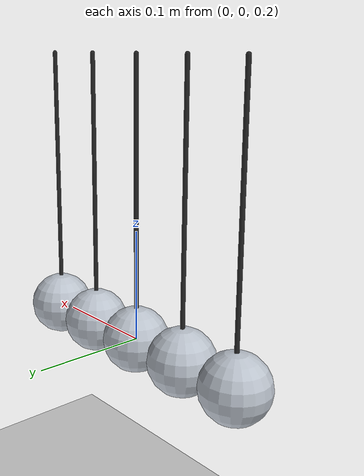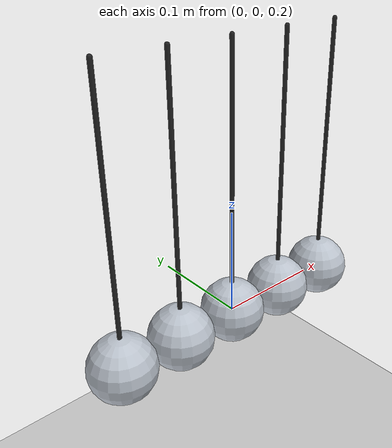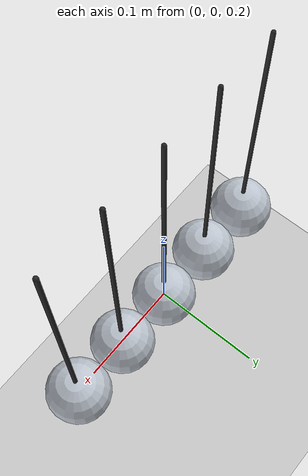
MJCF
<mujoco model="newtons_cradle_5_balls">
  <compiler angle="degree" coordinate="local" inertiafromgeom="true"/>
  <option timestep="0.002" gravity="0 0 -9.81" integrator="RK4"/>
  <size njmax="2000" nconmax="500"/>

  <asset>
    <!-- Shiny metal appearance -->
    <material name="metal_shiny" rgba="0.75 0.78 0.82 1" specular="0.9" shininess="0.8"/>
    <material name="string_mat"  rgba="0.15 0.15 0.15 1" specular="0.1" shininess="0.1"/>
  </asset>

  <default>
      <geom solref="0.001 1" solimp="0.98 0.99 0.001"/>
  </default>

  <worldbody>
    <!-- ground -->
    <geom name="floor" type="plane" size="2 2 0.1" rgba="0.8 0.8 0.8 1"/>

    <!-- Camera faces the balls -->
    <camera name="cam_front" pos="0 -1.2 0.35" xyaxes="1 0 0 0 0 1" fovy="45"/>

    <!-- Balls are aligned along X, equally spaced -->
    <!-- String length = 0.25 m, ball radius = 0.03 m -->
    <body name="cradle_root" pos="0 0 0.45">
      <!-- optional invisible reference -->
      <geom name="root_ref" type="sphere" size="0.001" rgba="0 0 0 0" contype="0" conaffinity="0"/>

      <!-- Leftmost ball -->
      <body name="ball1" pos="-0.12 0 0">
        <joint name="ball1_joint" type="hinge" axis="0 1 0" damping="0.0"/>
        <geom name="string1" type="capsule" fromto="0 0 0  0 0 -0.25" size="0.002"
              material="string_mat" contype="0" conaffinity="0"/>
        <geom name="ball1_geom" type="sphere" pos="0 0 -0.25" size="0.03" material="metal_shiny"
              density="7800"/>
      </body>

      <!-- Middle balls: hanging straight down -->
      <body name="ball2" pos="-0.06 0 0">
        <joint name="ball2_joint" type="hinge" axis="0 1 0" damping="0.0"/>
        <geom name="string2" type="capsule" fromto="0 0 0  0 0 -0.25" size="0.002"
              material="string_mat" contype="0" conaffinity="0"/>
        <geom name="ball2_geom" type="sphere" pos="0 0 -0.25" size="0.03" material="metal_shiny"
              density="7800"/>
      </body>

      <body name="ball3" pos="0 0 0">
        <joint name="ball3_joint" type="hinge" axis="0 1 0" damping="0.0"/>
        <geom name="string3" type="capsule" fromto="0 0 0  0 0 -0.25" size="0.002"
              material="string_mat" contype="0" conaffinity="0"/>
        <geom name="ball3_geom" type="sphere" pos="0 0 -0.25" size="0.03" material="metal_shiny"
              density="7800"/>
      </body>

      <body name="ball4" pos="0.06 0 0">
        <joint name="ball4_joint" type="hinge" axis="0 1 0" damping="0.0"/>
        <geom name="string4" type="capsule" fromto="0 0 0  0 0 -0.25" size="0.002"
              material="string_mat" contype="0" conaffinity="0"/>
        <geom name="ball4_geom" type="sphere" pos="0 0 -0.25" size="0.03" material="metal_shiny"
              density="7800"/>
      </body>

      <body name="ball5" pos="0.12 0 0">
        <joint name="ball5_joint" type="hinge" axis="0 1 0" damping="0.0"/>
        <geom name="string5" type="capsule" fromto="0 0 0  0 0 -0.25" size="0.002"
              material="string_mat" contype="0" conaffinity="0"/>
        <geom name="ball5_geom" type="sphere" pos="0 0 -0.25" size="0.03" material="metal_shiny"
              density="7800"/>
      </body>
    </body>
  </worldbody>

</mujoco>
